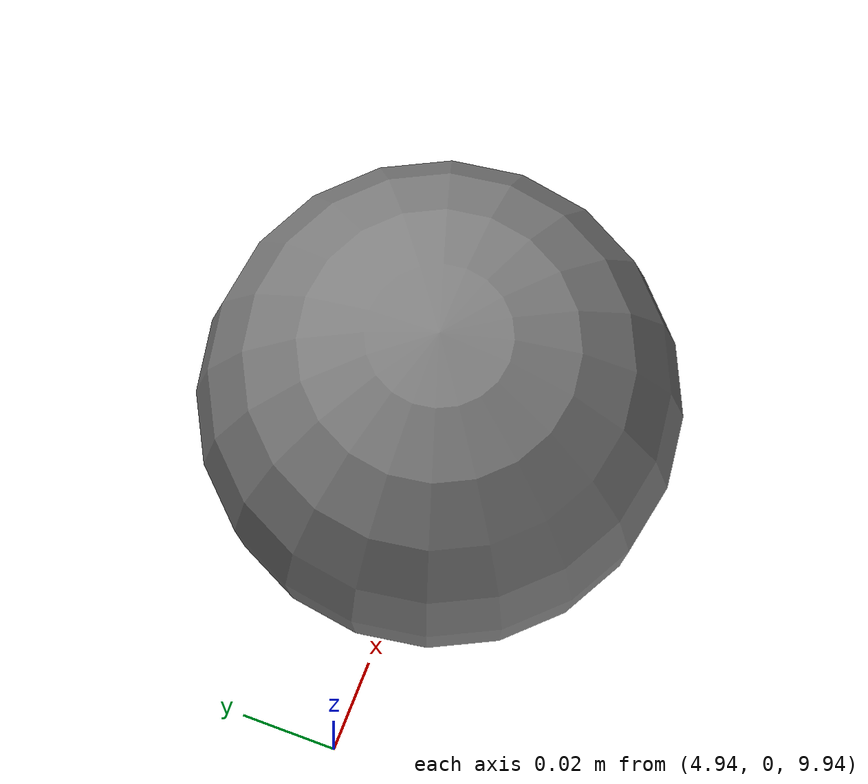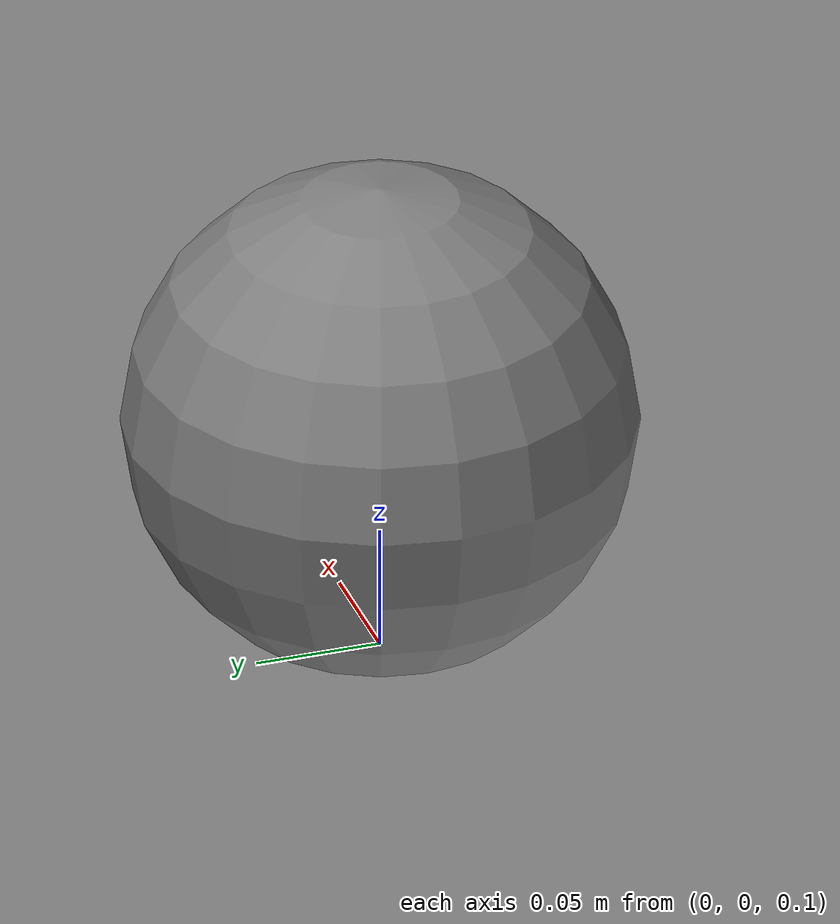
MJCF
<mujoco model="sleep_accum">
      <option gravity="0 0 -9.81" timestep="0.002" sleep_tolerance="0.1">
        <flag sleep="enable"/>
      </option>
      <worldbody>
        <geom type="plane" size="5 5 0.1" solref="0.005 1.5"/>
        <body name="ball" pos="0 0 0.2">
          <freejoint name="ball_free"/>
          <geom type="sphere" size="0.1" mass="1.0" solref="0.005 1.5"/>
        </body>
        <body name="sentinel" pos="5 0 10">
          <freejoint name="sentinel_free"/>
          <geom type="sphere" size="0.05" mass="0.01"/>
          <site name="imu" pos="0 0 0"/>
        </body>
      </worldbody>
      <sensor>
        <accelerometer site="imu"/>
      </sensor>
    </mujoco>
